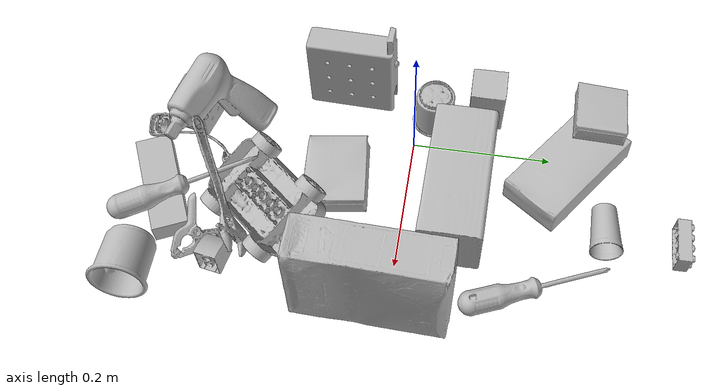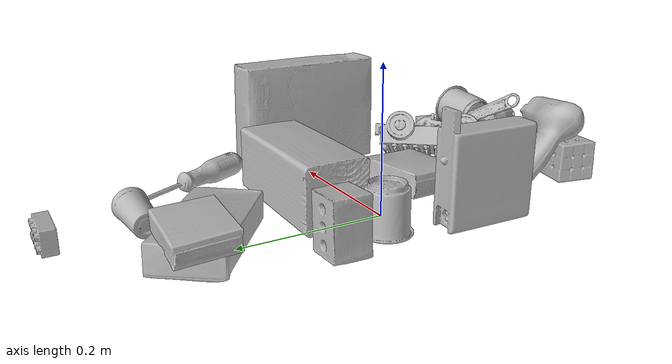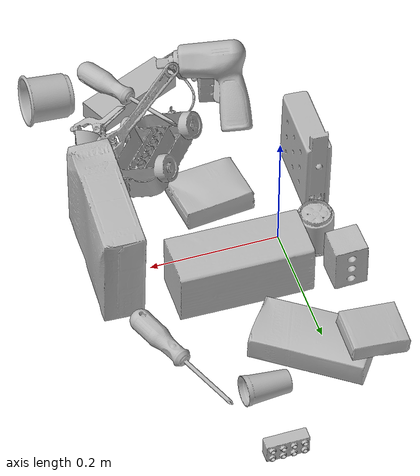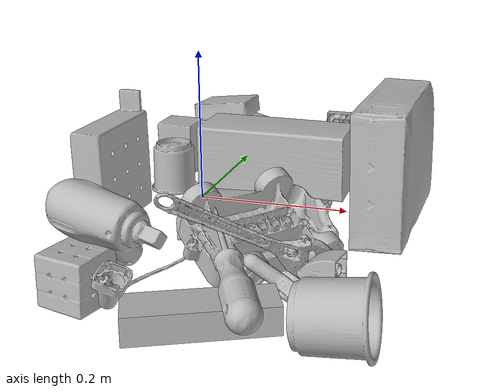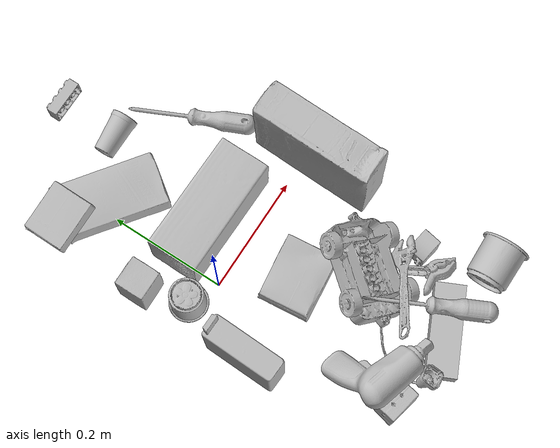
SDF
<sdf version="1.4">
  <world name="default">
    <light name="light1" type="point">
      <pose>0 0 1 0 0 0</pose>
      <diffuse>3 3 3 1</diffuse>
      <specular>3 3 3 1</specular>
    </light>
    <light name="light2" type="point">
      <pose>0 0.5 2 0 0 0</pose>
      <diffuse>1 1 1 1</diffuse>
      <specular>1 1 1 1</specular>
    </light>
    <light name="light3" type="point">
      <pose>0 0.5 2 0 0 0</pose>
      <diffuse>3 3 3 1</diffuse>
      <specular>3 3 3 1</specular>
    </light>
    <scene>
      <ambient>0.7 0.7 0.7</ambient>
    </scene>
    <model name="box21">
      <link name="link_box21">
        <collision name="default">
          <geometry>
            <mesh>
              <uri>model://cracker_box/collision_meshes/collision.obj</uri>
              <scale>1.0 1.0 1.0</scale>
            </mesh>
          </geometry>
          <surface>
            <friction>
              <ode>
                <mu>0.5</mu>
                <mu2>0.5</mu2>
              </ode>
            </friction>
          <contact>
        <ode>
            <max_vel>0</max_vel>
            <min_depth>0.0001</min_depth>
            <kp>1e8</kp>
        </ode>
    </contact></surface>
        </collision>
        <visual name="default">
          <geometry>
            <mesh>
              <uri>model://cracker_box/visual_meshes/visual.dae</uri>
              <scale>1.0 1.0 1.0</scale>
            </mesh>
          </geometry>
        </visual>
        <inertial>
          <mass>2.967785358428955</mass>
          <pose>0.0009464151808060706 0.00025434247800149024 -0.0017029535956680775 -0.0003162076618733006 -0.011106490531610344 0.00254679570085012</pose>
          <inertia>
            <ixx>0.0075487206</ixx>
            <iyy>0.012464421</iyy>
            <izz>0.017787872</izz>
            <ixy>0</ixy>
            <ixz>0</ixz>
            <iyz>0</iyz>
          </inertia>
        </inertial>
      </link>
      <pose>0.2610475718975067 -0.022032540291547775 0.08175769448280334 1.5452334291334002 0.009040468449514293 1.553367311433387</pose>
    </model>
    <model name="box22">
      <link name="link_box22">
        <collision name="default">
          <geometry>
            <mesh>
              <uri>model://rubiks_cube/collision_meshes/collision.obj</uri>
              <scale>1.0 1.0 1.0</scale>
            </mesh>
          </geometry>
          <surface>
            <friction>
              <ode>
                <mu>0.5</mu>
                <mu2>0.5</mu2>
              </ode>
            </friction>
          <contact>
        <ode>
            <max_vel>0</max_vel>
            <min_depth>0.0001</min_depth>
            <kp>1e8</kp>
        </ode>
    </contact></surface>
        </collision>
        <visual name="default">
          <geometry>
            <mesh>
              <uri>model://rubiks_cube/visual_meshes/visual.dae</uri>
              <scale>1.0 1.0 1.0</scale>
            </mesh>
          </geometry>
        </visual>
        <inertial>
          <mass>0.2631562352180481</mass>
          <pose>2.6721041649580002e-05 5.2569666877388954e-05 -7.264316082000732e-06 -0.05467275409565722 -0.09814109117242276 -0.03445701547045584</pose>
          <inertia>
            <ixx>0.0001454115</ixx>
            <iyy>0.00014473335</iyy>
            <izz>0.00014661645</izz>
            <ixy>0</ixy>
            <ixz>0</ixz>
            <iyz>0</iyz>
          </inertia>
        </inertial>
      </link>
      <pose>-0.007378435228019953 -0.3258143663406372 0.028680359944701195 5.420696960205283e-05 3.3879360799905034e-05 1.3714562769839878</pose>
    </model>
    <model name="box23">
      <link name="link_box23">
        <collision name="default">
          <geometry>
            <mesh>
              <uri>model://pudding_box/collision_meshes/collision.obj</uri>
              <scale>1.0 1.0 1.0</scale>
            </mesh>
          </geometry>
          <surface>
            <friction>
              <ode>
                <mu>0.5</mu>
                <mu2>0.5</mu2>
              </ode>
            </friction>
          <contact>
        <ode>
            <max_vel>0</max_vel>
            <min_depth>0.0001</min_depth>
            <kp>1e8</kp>
        </ode>
    </contact></surface>
        </collision>
        <visual name="default">
          <geometry>
            <mesh>
              <uri>model://pudding_box/visual_meshes/visual.dae</uri>
              <scale>1.0 1.0 1.0</scale>
            </mesh>
          </geometry>
        </visual>
        <inertial>
          <mass>0.41353368759155273</mass>
          <pose>0.0004894821904599667 0.0008067885646596551 -0.0005188827635720372 0.005213101814074476 -0.006603797777454713 0.020079821436089117</pose>
          <inertia>
            <ixx>0.0004674785</ixx>
            <iyy>0.00031452288</iyy>
            <izz>0.0006903542</izz>
            <ixy>0</ixy>
            <ixz>0</ixz>
            <iyz>0</iyz>
          </inertia>
        </inertial>
      </link>
      <pose>0.0757686123251915 -0.10118135064840317 0.019074300304055214 3.1283842880200914 0.025179516691380036 -1.4551394317332145</pose>
    </model>
    <model name="cup1">
      <link name="link_cup1">
        <collision name="default">
          <geometry>
            <mesh>
              <uri>model://cup_small/collision_meshes/collision.obj</uri>
              <scale>1.0 1.0 1.0</scale>
            </mesh>
          </geometry>
          <surface>
            <friction>
              <ode>
                <mu>0.5</mu>
                <mu2>0.5</mu2>
              </ode>
            </friction>
          <contact>
        <ode>
            <max_vel>0</max_vel>
            <min_depth>0.0001</min_depth>
            <kp>1e8</kp>
        </ode>
    </contact></surface>
        </collision>
        <visual name="default">
          <geometry>
            <mesh>
              <uri>model://cup_small/visual_meshes/visual.dae</uri>
              <scale>1.0 1.0 1.0</scale>
            </mesh>
          </geometry>
        </visual>
        <inertial>
          <mass>0.02095564641058445</mass>
          <pose>0.00010482477955520153 -0.0003377848770469427 -0.01074282731860876 -0.011492722259696445 -0.015280529703091471 -0.5058449819350237</pose>
          <inertia>
            <ixx>1.2338362e-05</ixx>
            <iyy>1.240201e-05</iyy>
            <izz>5.5708097e-06</izz>
            <ixy>0</ixy>
            <ixz>0</ixz>
            <iyz>0</iyz>
          </inertia>
        </inertial>
      </link>
      <pose>0.11319838464260101 0.28057822585105896 0.02011183463037014 1.494832915160594 0.1497738080771497 1.6106586128653828</pose>
    </model>
    <model name="cup2">
      <link name="link_cup2">
        <collision name="default">
          <geometry>
            <mesh>
              <uri>model://c_cups/collision_meshes/collision.obj</uri>
              <scale>1.0 1.0 1.0</scale>
            </mesh>
          </geometry>
          <surface>
            <friction>
              <ode>
                <mu>0.5</mu>
                <mu2>0.5</mu2>
              </ode>
            </friction>
          <contact>
        <ode>
            <max_vel>0</max_vel>
            <min_depth>0.0001</min_depth>
            <kp>1e8</kp>
        </ode>
    </contact></surface>
        </collision>
        <visual name="default">
          <geometry>
            <mesh>
              <uri>model://c_cups/visual_meshes/visual.dae</uri>
              <scale>1.0 1.0 1.0</scale>
            </mesh>
          </geometry>
        </visual>
        <inertial>
          <mass>0.04905003309249878</mass>
          <pose>0.0007237255922518671 0.0020153908990323544 -0.0012750986497849226 0.30215813246853196 0.013461388587527759 -0.08771773533446486</pose>
          <inertia>
            <ixx>3.6477843e-05</ixx>
            <iyy>3.583322e-05</iyy>
            <izz>3.225985e-05</izz>
            <ixy>0</ixy>
            <ixz>0</ixz>
            <iyz>0</iyz>
          </inertia>
        </inertial>
      </link>
      <pose>-0.04991050064563751 0.02411540597677231 0.03345802053809166 3.141591816318107 1.8815409717786867e-07 3.1126884187762207</pose>
    </model>
    <model name="box11">
      <link name="link_box11">
        <collision name="default">
          <geometry>
            <mesh>
              <uri>model://sugar_box/collision_meshes/collision.obj</uri>
              <scale>1.0 1.0 1.0</scale>
            </mesh>
          </geometry>
          <surface>
            <friction>
              <ode>
                <mu>0.5</mu>
                <mu2>0.5</mu2>
              </ode>
            </friction>
          <contact>
        <ode>
            <max_vel>0</max_vel>
            <min_depth>0.0001</min_depth>
            <kp>1e8</kp>
        </ode>
    </contact></surface>
        </collision>
        <visual name="default">
          <geometry>
            <mesh>
              <uri>model://sugar_box/visual_meshes/visual.dae</uri>
              <scale>1.0 1.0 1.0</scale>
            </mesh>
          </geometry>
        </visual>
        <inertial>
          <mass>0.9405714869499207</mass>
          <pose>0.0010343727190047503 3.849109634757042e-05 -0.0003636480832938105 -0.00040462618385709627 0.0010506635220579009 0.0026153790218148127</pose>
          <inertia>
            <ixx>0.0007836817</ixx>
            <iyy>0.0025330195</iyy>
            <izz>0.0030323272</izz>
            <ixy>0</ixy>
            <ixz>0</ixz>
            <iyz>0</iyz>
          </inertia>
        </inertial>
      </link>
      <pose>0.021162845194339752 0.22297914326190948 0.022896964102983475 -0.025120559628695166 -0.012475192426630892 2.5088375500878506</pose>
    </model>
    <model name="box12">
      <link name="link_box12">
        <collision name="default">
          <geometry>
            <mesh>
              <uri>model://jenga/collision_meshes/collision.obj</uri>
              <scale>1.0 1.0 1.0</scale>
            </mesh>
          </geometry>
          <surface>
            <friction>
              <ode>
                <mu>0.5</mu>
                <mu2>0.5</mu2>
              </ode>
            </friction>
          <contact>
        <ode>
            <max_vel>0</max_vel>
            <min_depth>0.0001</min_depth>
            <kp>1e8</kp>
        </ode>
    </contact></surface>
        </collision>
        <visual name="default">
          <geometry>
            <mesh>
              <uri>model://jenga/visual_meshes/visual.dae</uri>
              <scale>1.0 1.0 1.0</scale>
            </mesh>
          </geometry>
        </visual>
        <inertial>
          <mass>0.2285791039466858</mass>
          <pose>-2.502855807051674e-07 -0.00010250010382151231 -4.0923405322246253e-05 0.0 -7.342155186052628e-07 0.0</pose>
          <inertia>
            <ixx>6.3253385e-05</ixx>
            <iyy>0.00042860323</iyy>
            <izz>0.00045757034</izz>
            <ixy>0</ixy>
            <ixz>0</ixz>
            <iyz>0</iyz>
          </inertia>
        </inertial>
      </link>
      <pose>0.12980856001377106 -0.3422379791736603 0.015000040642917156 2.583519483054628e-06 8.217343618840181e-07 0.43752184184860465</pose>
    </model>
    <model name="box13">
      <link name="link_box13">
        <collision name="default">
          <geometry>
            <mesh>
              <uri>model://wood_block/collision_meshes/collision.obj</uri>
              <scale>1.0 1.0 1.0</scale>
            </mesh>
          </geometry>
          <surface>
            <friction>
              <ode>
                <mu>0.5</mu>
                <mu2>0.5</mu2>
              </ode>
            </friction>
          <contact>
        <ode>
            <max_vel>0</max_vel>
            <min_depth>0.0001</min_depth>
            <kp>1e8</kp>
        </ode>
    </contact></surface>
        </collision>
        <visual name="default">
          <geometry>
            <mesh>
              <uri>model://wood_block/visual_meshes/visual.dae</uri>
              <scale>1.0 1.0 1.0</scale>
            </mesh>
          </geometry>
        </visual>
        <inertial>
          <mass>1.608048677444458</mass>
          <pose>-5.813315056002466e-06 -0.000570809468626976 0.0002640858292579651 -0.05220975529066727 -0.005192695547513155 -0.006861377927637377</pose>
          <inertia>
            <ixx>0.002151813</ixx>
            <iyy>0.006797577</iyy>
            <izz>0.0067721503</izz>
            <ixy>0</ixy>
            <ixz>0</ixz>
            <iyz>0</iyz>
          </inertia>
        </inertial>
      </link>
      <pose>0.08486489951610565 0.07142067700624466 0.0452585332095623 -0.005208540528641035 0.005718742080966926 3.131944902514732</pose>
    </model>
    <model name="box14">
      <link name="link_box14">
        <collision name="default">
          <geometry>
            <mesh>
              <uri>model://gelatin_box/collision_meshes/collision.obj</uri>
              <scale>1.0 1.0 1.0</scale>
            </mesh>
          </geometry>
          <surface>
            <friction>
              <ode>
                <mu>0.5</mu>
                <mu2>0.5</mu2>
              </ode>
            </friction>
          <contact>
        <ode>
            <max_vel>0</max_vel>
            <min_depth>0.0001</min_depth>
            <kp>1e8</kp>
        </ode>
    </contact></surface>
        </collision>
        <visual name="default">
          <geometry>
            <mesh>
              <uri>model://gelatin_box/visual_meshes/visual.dae</uri>
              <scale>1.0 1.0 1.0</scale>
            </mesh>
          </geometry>
        </visual>
        <inertial>
          <mass>0.228233203291893</mass>
          <pose>0.0004319618456065655 0.00011156871914863586 -0.0003640321083366871 -0.0010503721031013481 -0.004755817754301117 0.016440566922732165</pose>
          <inertia>
            <ixx>0.000161114</ixx>
            <iyy>0.0001150829</iyy>
            <izz>0.0002452514</izz>
            <ixy>0</ixy>
            <ixz>0</ixz>
            <iyz>0</iyz>
          </inertia>
        </inertial>
      </link>
      <pose>-0.05474287271499634 0.2616519033908844 0.05860605835914612 3.037777879525901 0.04057887319477165 1.5643669573404386</pose>
    </model>
    <model name="cup15">
      <link name="link_cup15">
        <collision name="default">
          <geometry>
            <mesh>
              <uri>model://f_cups/collision_meshes/collision.obj</uri>
              <scale>1.0 1.0 1.0</scale>
            </mesh>
          </geometry>
          <surface>
            <friction>
              <ode>
                <mu>0.5</mu>
                <mu2>0.5</mu2>
              </ode>
            </friction>
          <contact>
        <ode>
            <max_vel>0</max_vel>
            <min_depth>0.0001</min_depth>
            <kp>1e8</kp>
        </ode>
    </contact></surface>
        </collision>
        <visual name="default">
          <geometry>
            <mesh>
              <uri>model://f_cups/visual_meshes/visual.dae</uri>
              <scale>1.0 1.0 1.0</scale>
            </mesh>
          </geometry>
        </visual>
        <inertial>
          <mass>0.05267045274376869</mass>
          <pose>-0.003171468386426568 -0.0006240073125809431 -0.003655537962913513 0.7862325736201227 -0.2607934836260618 -0.18237270236977254</pose>
          <inertia>
            <ixx>4.9511644e-05</ixx>
            <iyy>5.193826e-05</iyy>
            <izz>5.4069198e-05</izz>
            <ixy>0</ixy>
            <ixz>0</ixz>
            <iyz>0</iyz>
          </inertia>
        </inertial>
      </link>
      <pose>0.26026877760887146 -0.3530448377132416 0.03710760176181793 -0.49525198318955377 1.4546997185104185 -0.48038243841768186</pose>
    </model>
    <model name="toy1">
      <link name="link_toy1">
        <collision name="default">
          <geometry>
            <mesh>
              <uri>model://g_lego_duplo/collision_meshes/collision.obj</uri>
              <scale>1.0 1.0 1.0</scale>
            </mesh>
          </geometry>
          <surface>
            <friction>
              <ode>
                <mu>0.5</mu>
                <mu2>0.5</mu2>
              </ode>
            </friction>
          <contact>
        <ode>
            <max_vel>0</max_vel>
            <min_depth>0.0001</min_depth>
            <kp>1e8</kp>
        </ode>
    </contact></surface>
        </collision>
        <visual name="default">
          <geometry>
            <mesh>
              <uri>model://g_lego_duplo/visual_meshes/visual.dae</uri>
              <scale>1.0 1.0 1.0</scale>
            </mesh>
          </geometry>
        </visual>
        <inertial>
          <mass>0.5557854771614075</mass>
          <pose>-0.050047677010297775 0.0017554635414853692 0.0038806761149317026 0.01096300832625367 0.038108254431045284 -0.0965302354071939</pose>
          <inertia>
            <ixx>0.0008053398</ixx>
            <iyy>0.0024348022</iyy>
            <izz>0.003046027</izz>
            <ixy>0</ixy>
            <ixz>0</ixz>
            <iyz>0</iyz>
          </inertia>
        </inertial>
      </link>
      <pose>0.10585292428731918 -0.2374764382839203 0.03910581022500992 2.6884810807964366 0.003201963694684412 -2.2568324013962706</pose>
    </model>
    <model name="toy2">
      <link name="link_toy2">
        <collision name="default">
          <geometry>
            <mesh>
              <uri>model://b_toy_airplane/collision_meshes/collision.obj</uri>
              <scale>1.0 1.0 1.0</scale>
            </mesh>
          </geometry>
          <surface>
            <friction>
              <ode>
                <mu>0.5</mu>
                <mu2>0.5</mu2>
              </ode>
            </friction>
          <contact>
        <ode>
            <max_vel>0</max_vel>
            <min_depth>0.0001</min_depth>
            <kp>1e8</kp>
        </ode>
    </contact></surface>
        </collision>
        <visual name="default">
          <geometry>
            <mesh>
              <uri>model://b_toy_airplane/visual_meshes/visual.dae</uri>
              <scale>1.0 1.0 1.0</scale>
            </mesh>
          </geometry>
        </visual>
        <inertial>
          <mass>0.5134223699569702</mass>
          <pose>0.00508136348798871 0.004015584941953421 0.009543065913021564 -0.0400181167848636 -0.04022184003740235 -0.5601502230799963</pose>
          <inertia>
            <ixx>0.00095317804</ixx>
            <iyy>0.00038099466</iyy>
            <izz>0.0011858484</izz>
            <ixy>0</ixy>
            <ixz>0</ixz>
            <iyz>0</iyz>
          </inertia>
        </inertial>
      </link>
      <pose>0.0017606934998184443 -0.2788216173648834 0.07777947932481766 2.397813134914049 0.09364928729092215 -0.26504620098327003</pose>
    </model>
    <model name="toy3">
      <link name="link_toy3">
        <collision name="default">
          <geometry>
            <mesh>
              <uri>model://foam_brick/collision_meshes/collision.obj</uri>
              <scale>1.0 1.0 1.0</scale>
            </mesh>
          </geometry>
          <surface>
            <friction>
              <ode>
                <mu>0.5</mu>
                <mu2>0.5</mu2>
              </ode>
            </friction>
          <contact>
        <ode>
            <max_vel>0</max_vel>
            <min_depth>0.0001</min_depth>
            <kp>1e8</kp>
        </ode>
    </contact></surface>
        </collision>
        <visual name="default">
          <geometry>
            <mesh>
              <uri>model://foam_brick/visual_meshes/visual.dae</uri>
              <scale>1.0 1.0 1.0</scale>
            </mesh>
          </geometry>
        </visual>
        <inertial>
          <mass>0.10737738013267517</mass>
          <pose>-0.0002522472059354186 0.00034584314562380314 -0.0002532101352699101 -0.29401713280371045 0.01727443708188723 -0.0007449863066790336</pose>
          <inertia>
            <ixx>4.6904443e-05</ixx>
            <iyy>7.488536e-05</iyy>
            <izz>7.583706e-05</izz>
            <ixy>0</ixy>
            <ixz>0</ixz>
            <iyz>0</iyz>
          </inertia>
        </inertial>
      </link>
      <pose>-0.07137160748243332 0.09968733042478561 0.03830837830901146 2.010292334041359 1.5521823324211654 -2.695804088519189</pose>
    </model>
    <model name="toy4">
      <link name="link_toy4">
        <collision name="default">
          <geometry>
            <mesh>
              <uri>model://c_lego_duplo/collision_meshes/collision.obj</uri>
              <scale>1.0 1.0 1.0</scale>
            </mesh>
          </geometry>
          <surface>
            <friction>
              <ode>
                <mu>0.5</mu>
                <mu2>0.5</mu2>
              </ode>
            </friction>
          <contact>
        <ode>
            <max_vel>0</max_vel>
            <min_depth>0.0001</min_depth>
            <kp>1e8</kp>
        </ode>
    </contact></surface>
        </collision>
        <visual name="default">
          <geometry>
            <mesh>
              <uri>model://c_lego_duplo/visual_meshes/visual.dae</uri>
              <scale>1.0 1.0 1.0</scale>
            </mesh>
          </geometry>
        </visual>
        <inertial>
          <mass>0.0418582409620285</mass>
          <pose>0.00031645974377170205 0.00019464627257548273 0.0010453157592564821 -0.011520806412656213 0.005900100982121691 0.03110035028309464</pose>
          <inertia>
            <ixx>1.6107831e-05</ixx>
            <iyy>5.145423e-06</iyy>
            <izz>1.8823655e-05</izz>
            <ixy>0</ixy>
            <ixz>0</ixz>
            <iyz>0</iyz>
          </inertia>
        </inertial>
      </link>
      <pose>0.11875135451555252 0.387966513633728 0.016251573339104652 2.075947513264644 -1.5447418161199615 2.6424448704943826</pose>
    </model>
    <model name="toy5">
      <link name="link_toy5">
        <collision name="default">
          <geometry>
            <mesh>
              <uri>model://nine_hole_peg_test/collision_meshes/collision.obj</uri>
              <scale>1.0 1.0 1.0</scale>
            </mesh>
          </geometry>
          <surface>
            <friction>
              <ode>
                <mu>0.5</mu>
                <mu2>0.5</mu2>
              </ode>
            </friction>
          <contact>
        <ode>
            <max_vel>0</max_vel>
            <min_depth>0.0001</min_depth>
            <kp>1e8</kp>
        </ode>
    </contact></surface>
        </collision>
        <visual name="default">
          <geometry>
            <mesh>
              <uri>model://nine_hole_peg_test/visual_meshes/visual.dae</uri>
              <scale>1.0 1.0 1.0</scale>
            </mesh>
          </geometry>
        </visual>
        <inertial>
          <mass>0.44585999846458435</mass>
          <pose>-0.004617387428879738 -0.009647615253925323 2.6460689696250483e-05 -0.001466677754783098 0.0007194209279192062 -0.6342398490080472</pose>
          <inertia>
            <ixx>0.0006971755</ixx>
            <iyy>0.0006509454</iyy>
            <izz>0.0012216569</izz>
            <ixy>0</ixy>
            <ixz>0</ixz>
            <iyz>0</iyz>
          </inertia>
        </inertial>
      </link>
      <pose>-0.07789792120456696 -0.096642404794693 0.07401728630065918 1.558510279450939 -0.007628410611817839 1.5406408895575092</pose>
    </model>
    <model name="toy6">
      <link name="link_toy6">
        <collision name="default">
          <geometry>
            <mesh>
              <uri>model://d_lego_duplo/collision_meshes/collision.obj</uri>
              <scale>1.0 1.0 1.0</scale>
            </mesh>
          </geometry>
          <surface>
            <friction>
              <ode>
                <mu>0.5</mu>
                <mu2>0.5</mu2>
              </ode>
            </friction>
          <contact>
        <ode>
            <max_vel>0</max_vel>
            <min_depth>0.0001</min_depth>
            <kp>1e8</kp>
        </ode>
    </contact></surface>
        </collision>
        <visual name="default">
          <geometry>
            <mesh>
              <uri>model://d_lego_duplo/visual_meshes/visual.dae</uri>
              <scale>1.0 1.0 1.0</scale>
            </mesh>
          </geometry>
        </visual>
        <inertial>
          <mass>0.03287249803543091</mass>
          <pose>0.00283056334592402 0.0001636616507312283 0.000858980929479003 0.08010843587180921 -0.38355193616427774 0.0010296778305230027</pose>
          <inertia>
            <ixx>6.363631e-06</ixx>
            <iyy>9.031719e-06</iyy>
            <izz>8.709827e-06</izz>
            <ixy>0</ixy>
            <ixz>0</ixz>
            <iyz>0</iyz>
          </inertia>
        </inertial>
      </link>
      <pose>0.2225722074508667 -0.2432066798210144 0.024197034537792206 -0.8432742471835523 1.5707920263395925 2.114243125174026</pose>
    </model>
    <model name="hardware1">
      <link name="link_hardware1">
        <collision name="default">
          <geometry>
            <mesh>
              <uri>model://phillips_screwdriver/collision_meshes/collision.obj</uri>
              <scale>1.0 1.0 1.0</scale>
            </mesh>
          </geometry>
          <surface>
            <friction>
              <ode>
                <mu>0.5</mu>
                <mu2>0.5</mu2>
              </ode>
            </friction>
          <contact>
        <ode>
            <max_vel>0</max_vel>
            <min_depth>0.0001</min_depth>
            <kp>1e8</kp>
        </ode>
    </contact></surface>
        </collision>
        <visual name="default">
          <geometry>
            <mesh>
              <uri>model://phillips_screwdriver/visual_meshes/visual.dae</uri>
              <scale>1.0 1.0 1.0</scale>
            </mesh>
          </geometry>
        </visual>
        <inertial>
          <mass>0.05929635465145111</mass>
          <pose>-0.04777182266116142 0.0010362300090491772 -0.00045555492397397757 -0.15720933335137202 0.005850991845378533 -0.002156742438797471</pose>
          <inertia>
            <ixx>6.9667135e-06</ixx>
            <iyy>8.735042e-05</iyy>
            <izz>8.742465e-05</izz>
            <ixy>0</ixy>
            <ixz>0</ixz>
            <iyz>0</iyz>
          </inertia>
        </inertial>
      </link>
      <pose>0.2106793224811554 0.18916726112365723 0.01548556424677372 -1.6945582393672742 0.0454389237865271 1.9915763420670558</pose>
    </model>
    <model name="hardware2">
      <link name="link_hardware2">
        <collision name="default">
          <geometry>
            <mesh>
              <uri>model://flat_screwdriver/collision_meshes/collision.obj</uri>
              <scale>1.0 1.0 1.0</scale>
            </mesh>
          </geometry>
          <surface>
            <friction>
              <ode>
                <mu>0.5</mu>
                <mu2>0.5</mu2>
              </ode>
            </friction>
          <contact>
        <ode>
            <max_vel>0</max_vel>
            <min_depth>0.0001</min_depth>
            <kp>1e8</kp>
        </ode>
    </contact></surface>
        </collision>
        <visual name="default">
          <geometry>
            <mesh>
              <uri>model://flat_screwdriver/visual_meshes/visual.dae</uri>
              <scale>1.0 1.0 1.0</scale>
            </mesh>
          </geometry>
        </visual>
        <inertial>
          <mass>0.08023945242166519</mass>
          <pose>-0.0489187017083168 -0.0006576800369657576 -0.000614091579336673 -0.561358306335632 -0.0032337267228942767 0.006982275729110292</pose>
          <inertia>
            <ixx>9.4802335e-06</ixx>
            <iyy>0.00012035375</iyy>
            <izz>0.00012029803</izz>
            <ixy>0</ixy>
            <ixz>0</ixz>
            <iyz>0</iyz>
          </inertia>
        </inertial>
      </link>
      <pose>0.1442493200302124 -0.3032970428466797 0.053636617958545685 -1.4172738573566483 -0.13202478657062722 2.0470387235364567</pose>
    </model>
    <model name="hardware3">
      <link name="link_hardware3">
        <collision name="default">
          <geometry>
            <mesh>
              <uri>model://medium_clamp/collision_meshes/collision.obj</uri>
              <scale>1.0 1.0 1.0</scale>
            </mesh>
          </geometry>
          <surface>
            <friction>
              <ode>
                <mu>0.5</mu>
                <mu2>0.5</mu2>
              </ode>
            </friction>
          <contact>
        <ode>
            <max_vel>0</max_vel>
            <min_depth>0.0001</min_depth>
            <kp>1e8</kp>
        </ode>
    </contact></surface>
        </collision>
        <visual name="default">
          <geometry>
            <mesh>
              <uri>model://medium_clamp/visual_meshes/visual.dae</uri>
              <scale>1.0 1.0 1.0</scale>
            </mesh>
          </geometry>
        </visual>
        <inertial>
          <mass>0.025976430624723434</mass>
          <pose>0.0053909942507743835 0.0003953239065594971 -0.0001222159480676055 -0.001226907020768324 0.0025845009771016812 0.038207788380880015</pose>
          <inertia>
            <ixx>7.0769133e-06</ixx>
            <iyy>1.02989125e-05</iyy>
            <izz>1.5863408e-05</izz>
            <ixy>0</ixy>
            <ixz>0</ixz>
            <iyz>0</iyz>
          </inertia>
        </inertial>
      </link>
      <pose>0.19761593639850616 -0.2754245698451996 0.02059338614344597 2.455415200430518 0.20939716962234706 -0.5479994016461445</pose>
    </model>
    <model name="hardware4">
      <link name="link_hardware4">
        <collision name="default">
          <geometry>
            <mesh>
              <uri>model://adjustable_wrench/collision_meshes/collision.obj</uri>
              <scale>1.0 1.0 1.0</scale>
            </mesh>
          </geometry>
          <surface>
            <friction>
              <ode>
                <mu>0.5</mu>
                <mu2>0.5</mu2>
              </ode>
            </friction>
          <contact>
        <ode>
            <max_vel>0</max_vel>
            <min_depth>0.0001</min_depth>
            <kp>1e8</kp>
        </ode>
    </contact></surface>
        </collision>
        <visual name="default">
          <geometry>
            <mesh>
              <uri>model://adjustable_wrench/visual_meshes/visual.dae</uri>
              <scale>1.0 1.0 1.0</scale>
            </mesh>
          </geometry>
        </visual>
        <inertial>
          <mass>0.023418840020895004</mass>
          <pose>0.03740980848670006 -0.00289688678458333 -0.0011149229248985648 -0.014473354604289867 0.006656022134877207 -0.010954199158636425</pose>
          <inertia>
            <ixx>4.793005e-06</ixx>
            <iyy>5.609652e-05</iyy>
            <izz>6.0634928e-05</izz>
            <ixy>0</ixy>
            <ixz>0</ixz>
            <iyz>0</iyz>
          </inertia>
        </inertial>
      </link>
      <pose>0.14987027645111084 -0.25105488300323486 0.06158590316772461 2.0915920500619714 0.49647614142915075 0.5082253346036549</pose>
    </model>
  <physics type="ode">
      <max_contacts>50</max_contacts>
      <ode>
        <solver>
          <type>quick</type>
          <iters>75</iters>
        </solver>
        <constraints>
          <contact_max_correcting_vel>0</contact_max_correcting_vel>
          <contact_surface_layer>0</contact_surface_layer>
        </constraints>
      </ode>
    </physics></world>
</sdf>
